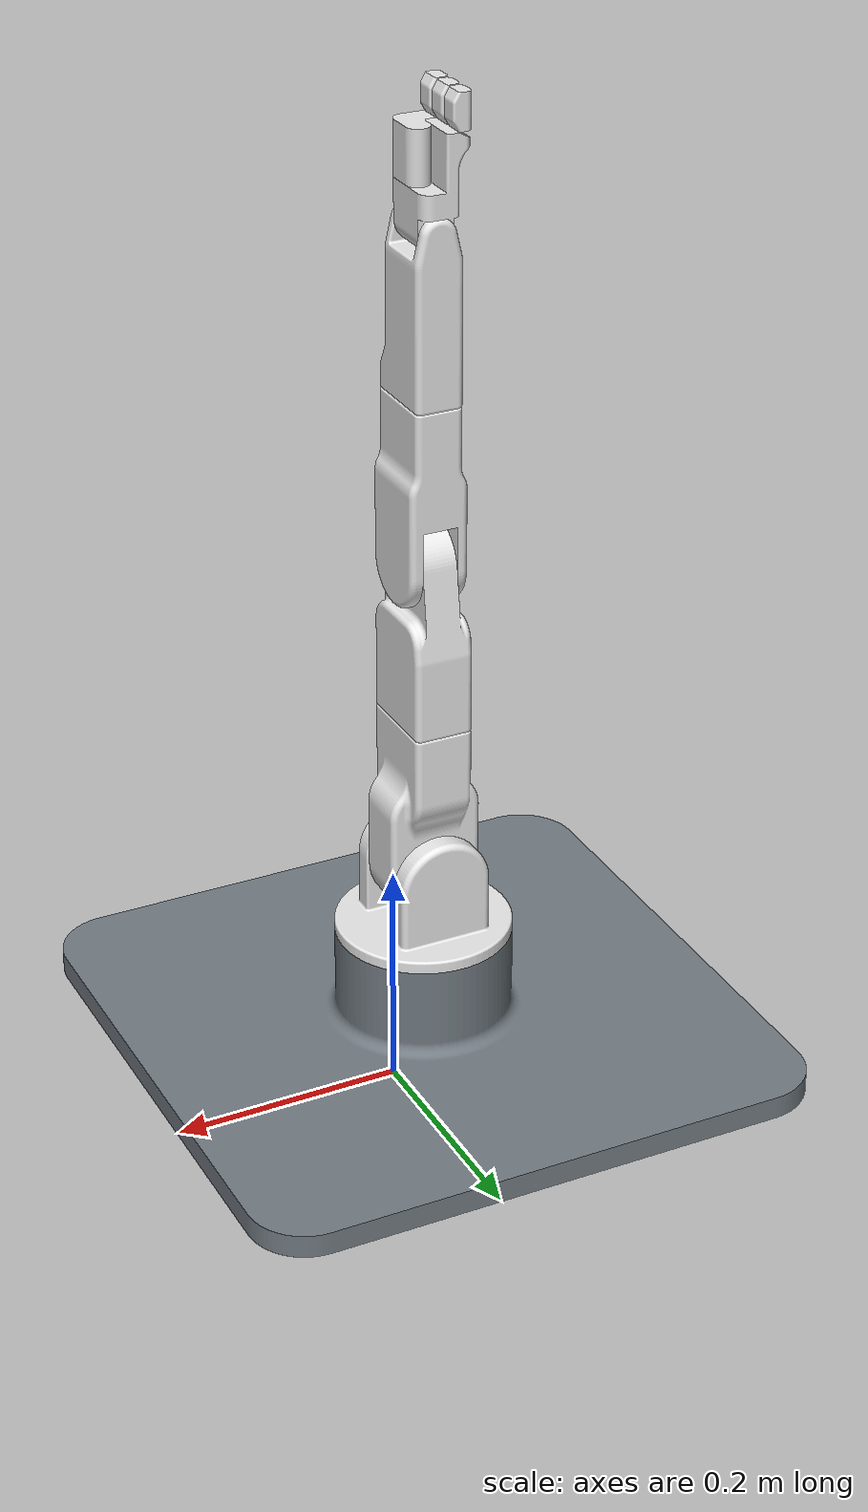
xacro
<?xml version="1.0"?>
<robot xmlns:xacro="http://www.ros.org/wiki/xacro" name="mrm_001">
    <xacro:arg name="initial_positions_file" default="initial_positions.yaml" />

    <!-- Import mrm_001 urdf file -->
    <xacro:include filename="$(find mrm_sim)/description/xacro/mrm_001.urdf.xacro" />

    <!-- Import control_xacro -->
    <xacro:include filename="mrm_001.ros2_control.xacro" />

    <xacro:mrm_001_ros2_control name="FakeSystem" initial_positions_file="$(arg initial_positions_file)"/>

</robot>

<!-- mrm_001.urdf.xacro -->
<robot xmlns:xacro="http://www.ros.org/wiki/xacro" name="mrm_001">

  <xacro:arg name="namespace" default=""/>

  <xacro:include filename="$(find mrm_sim)/description/xacro/macro.mrm_001_description.xacro" />

  <xacro:mrm_001 namespace="$(arg namespace)"/>

</robot>

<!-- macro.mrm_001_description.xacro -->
<robot name="mrm_001"
	xmlns:xacro="http://www.ros.org/wiki/xacro">

	<xacro:include filename="$(find mrm_sim)/description/xacro/macro.gazebo_config_control.xacro" />
	<xacro:include filename="$(find mrm_sim)/description/xacro/macro.transmission.xacro" />

	<xacro:macro name="mrm_001" params="namespace">

		<link name="base">
			<visual>
				<origin xyz="-0.021579 0.0130665 0.072432" rpy="0 -0 0" />
				<geometry>
					<mesh filename="file:///$(find mrm_sim)/description/meshes/base.stl"/>
				</geometry>
				<material name="base_material">
					<color rgba="0.439216 0.47451 0.501961 1.0"/>
				</material>
			</visual>
			<collision>
				<origin xyz="-0.021579 0.0130665 0.072432" rpy="0 -0 0" />
				<geometry>
					<mesh filename="file:///$(find mrm_sim)/description/meshes/base.stl"/>
				</geometry>
				<material name="base_material">
					<color rgba="0.439216 0.47451 0.501961 1.0"/>
				</material>
			</collision>
			<inertial>
				<origin xyz="-0.021579 0.0130665 0.0735291" rpy="0 0 0"/>
				<mass value="127.624" />
				<inertia ixx="2.14806" ixy="3.89635e-16" ixz="0" iyy="2.14806" iyz="0" izz="4.14935" />
			</inertial>
		</link>

		<link name="mrm_link_1">
			<visual>
				<origin xyz="1.04083e-17 -3.46945e-18 -0.02" rpy="3.14159 -0 0" />
				<geometry>
					<mesh filename="file:///$(find mrm_sim)/description/meshes/mrm_link_1.stl"/>
				</geometry>
				<material name="mrm_link_1_material">
					<color rgba="0.901961 0.901961 0.901961 1.0"/>
				</material>
			</visual>
			<collision>
				<origin xyz="1.04083e-17 -3.46945e-18 -0.02" rpy="3.14159 -0 0" />
				<geometry>
					<mesh filename="file:///$(find mrm_sim)/description/meshes/mrm_link_1.stl"/>
				</geometry>
				<material name="mrm_link_1_material">
					<color rgba="0.901961 0.901961 0.901961 1.0"/>
				</material>
			</collision>
			<inertial>
				<origin xyz="1.17022e-17 9.15212e-18 -0.0323401" rpy="0 0 0"/>
				<mass value="0.457002" />
				<inertia ixx="0.000783702" ixy="0" ixz="0" iyy="0.000994831" iyz="0" izz="0.000989884" />
			</inertial>
		</link>

		<link name="mrm_link_2">
			<visual>
				<origin xyz="-1.04083e-17 -0.07 -0.05" rpy="-1.2326e-32 -1.2326e-32 -1.2326e-32" />
				<geometry>
					<mesh filename="file:///$(find mrm_sim)/description/meshes/mrm_link_2.stl"/>
				</geometry>
				<material name="mrm_link_2_material">
					<color rgba="0.901961 0.901961 0.901961 1.0"/>
				</material>
			</visual>
			<collision>
				<origin xyz="-1.04083e-17 -0.07 -0.05" rpy="-1.2326e-32 -1.2326e-32 -1.2326e-32" />
				<geometry>
					<mesh filename="file:///$(find mrm_sim)/description/meshes/mrm_link_2.stl"/>
				</geometry>
				<material name="mrm_link_2_material">
					<color rgba="0.901961 0.901961 0.901961 1.0"/>
				</material>
			</collision>
			<inertial>
				<origin xyz="-9.37001e-09 -0.055345 -0.025" rpy="0 0 0"/>
				<mass value="0.724873" />
				<inertia ixx="0.00195482" ixy="-3.22679e-10" ixz="-8.48697e-12" iyy="0.000537775" iyz="-3.35181e-10" izz="0.00198303" />
			</inertial>
		</link>

		<link name="mrm_link_3">
			<visual>
				<origin xyz="-6.93889e-18 -0.025 -0.07" rpy="-1.5708 -1.2326e-32 -1.2326e-32" />
				<geometry>
					<mesh filename="file:///$(find mrm_sim)/description/meshes/mrm_link_3.stl"/>
				</geometry>
				<material name="mrm_link_3_material">
					<color rgba="0.901961 0.901961 0.901961 1.0"/>
				</material>
			</visual>
			<collision>
				<origin xyz="-6.93889e-18 -0.025 -0.07" rpy="-1.5708 -1.2326e-32 -1.2326e-32" />
				<geometry>
					<mesh filename="file:///$(find mrm_sim)/description/meshes/mrm_link_3.stl"/>
				</geometry>
				<material name="mrm_link_3_material">
					<color rgba="0.901961 0.901961 0.901961 1.0"/>
				</material>
			</collision>
			<inertial>
				<origin xyz="0.0012311 -2.33746e-11 -0.0716506" rpy="0 0 0"/>
				<mass value="0.54821" />
				<inertia ixx="0.00121056" ixy="-2.94841e-12" ixz="-3.95885e-05" iyy="0.00138926" iyz="-7.93491e-13" izz="0.000368182" />
			</inertial>
		</link>

		<link name="mrm_link_4">
			<visual>
				<origin xyz="-8.67362e-18 -0.07 -0.01" rpy="4.93038e-32 -1.07439e-31 4.23516e-22" />
				<geometry>
					<mesh filename="file:///$(find mrm_sim)/description/meshes/mrm_link_4.stl"/>
				</geometry>
				<material name="mrm_link_4_material">
					<color rgba="0.901961 0.901961 0.901961 1.0"/>
				</material>
			</visual>
			<collision>
				<origin xyz="-8.67362e-18 -0.07 -0.01" rpy="4.93038e-32 -1.07439e-31 4.23516e-22" />
				<geometry>
					<mesh filename="file:///$(find mrm_sim)/description/meshes/mrm_link_4.stl"/>
				</geometry>
				<material name="mrm_link_4_material">
					<color rgba="0.901961 0.901961 0.901961 1.0"/>
				</material>
			</collision>
			<inertial>
				<origin xyz="-1.09943e-17 -0.0673906 0.015" rpy="0 0 0"/>
				<mass value="0.412468" />
				<inertia ixx="0.000869642" ixy="1.08659e-25" ixz="2.40142e-34" iyy="0.000256564" iyz="4.64206e-35" izz="0.000941521" />
			</inertial>
		</link>

		<link name="mrm_link_5">
			<visual>
				<origin xyz="-0.000355339 -0.02 -0.07" rpy="-1.5708 -0 2.05329e-30" />
				<geometry>
					<mesh filename="file:///$(find mrm_sim)/description/meshes/mrm_link_5.stl"/>
				</geometry>
				<material name="mrm_link_5_material">
					<color rgba="0.901961 0.901961 0.901961 1.0"/>
				</material>
			</visual>
			<collision>
				<origin xyz="-0.000355339 -0.02 -0.07" rpy="-1.5708 -0 2.05329e-30" />
				<geometry>
					<mesh filename="file:///$(find mrm_sim)/description/meshes/mrm_link_5.stl"/>
				</geometry>
				<material name="mrm_link_5_material">
					<color rgba="0.901961 0.901961 0.901961 1.0"/>
				</material>
			</collision>
			<inertial>
				<origin xyz="-0.00417037 -5.28886e-12 -0.0650493" rpy="0 0 0"/>
				<mass value="0.332243" />
				<inertia ixx="0.000543467" ixy="6.10432e-13" ixz="1.93456e-05" iyy="0.000616597" iyz="-8.66254e-14" izz="0.000159715" />
			</inertial>
		</link>

		<link name="mrm_link_6">
			<visual>
				<origin xyz="0.04 -0.015 -0.02" rpy="-1.5708 -1.5708 0" />
				<geometry>
					<mesh filename="file:///$(find mrm_sim)/description/meshes/mrm_link_6.stl"/>
				</geometry>
				<material name="mrm_link_6_material">
					<color rgba="0.901961 0.901961 0.901961 1.0"/>
				</material>
			</visual>
			<collision>
				<origin xyz="0.04 -0.015 -0.02" rpy="-1.5708 -1.5708 0" />
				<geometry>
					<mesh filename="file:///$(find mrm_sim)/description/meshes/mrm_link_6.stl"/>
				</geometry>
				<material name="mrm_link_6_material">
					<color rgba="0.901961 0.901961 0.901961 1.0"/>
				</material>
			</collision>
			<inertial>
				<origin xyz="0.0258522 -0.00332296 -0.0173842" rpy="0 0 0"/>
				<mass value="0.095315" />
				<inertia ixx="7.76724e-05" ixy="2.20808e-06" ixz="1.09983e-05" iyy="6.55423e-05" iyz="-8.61508e-06" izz="2.84049e-05" />
			</inertial>
		</link>

		<link name="thumb_base">
			<visual>
				<origin xyz="-3.46945e-18 0 0" rpy="3.14159 -0 -4.75263e-20" />
				<geometry>
					<mesh filename="file:///$(find mrm_sim)/description/meshes/thumb_base.stl"/>
				</geometry>
				<material name="thumb_base_material">
					<color rgba="0.901961 0.901961 0.901961 1.0"/>
				</material>
			</visual>
			<collision>
				<origin xyz="-3.46945e-18 0 0" rpy="3.14159 -0 -4.75263e-20" />
				<geometry>
					<mesh filename="file:///$(find mrm_sim)/description/meshes/thumb_base.stl"/>
				</geometry>
				<material name="thumb_base_material">
					<color rgba="0.901961 0.901961 0.901961 1.0"/>
				</material>
			</collision>
			<inertial>
				<origin xyz="-0.00466898 0.0130108 -0.023257" rpy="0 0 0"/>
				<mass value="0.0472774" />
				<inertia ixx="1.32446e-05" ixy="1.59951e-06" ixz="-6.91584e-07" iyy="1.18987e-05" iyz="2.50125e-07" izz="9.24953e-06" />
			</inertial>
		</link>

		<link name="finger_link">
			<visual>
				<origin xyz="-0.015 -0.0035 0.009" rpy="1.5708 -4.23516e-22 0" />
				<geometry>
					<mesh filename="file:///$(find mrm_sim)/description/meshes/finger_link.stl"/>
				</geometry>
				<material name="finger_link_material">
					<color rgba="0.901961 0.901961 0.901961 1.0"/>
				</material>
			</visual>
			<collision>
				<origin xyz="-0.015 -0.0035 0.009" rpy="1.5708 -4.23516e-22 0" />
				<geometry>
					<mesh filename="file:///$(find mrm_sim)/description/meshes/finger_link.stl"/>
				</geometry>
				<material name="finger_link_material">
					<color rgba="0.901961 0.901961 0.901961 1.0"/>
				</material>
			</collision>
			<inertial>
				<origin xyz="-0.015 -0.0037786 1.73472e-18" rpy="0 0 0"/>
				<mass value="0.00804659" />
				<inertia ixx="3.48713e-07" ixy="1.70679e-28" ixz="-7.43421e-13" iyy="7.51787e-07" iyz="-8.78592e-26" izz="6.95805e-07" />
			</inertial>
		</link>

		<joint name="revolute_finger_3a" type="revolute">
			<origin xyz="-0.02 0.02 -0.045" rpy="-1.5708 -1.5708 0" />
			<parent link="thumb_base" />
			<child link="finger_link" />
			<axis xyz="0 0 1"/>
			<limit effort="10" lower="-1.5708" upper="1.5708" velocity="6.2832"/>
			<joint_properties friction="1"/>
		</joint>

		<joint name="revolute_thumb" type="revolute">
			<origin xyz="0.035 0.005 -0.02" rpy="-1.5708 0.00055944 1.5708" />
			<parent link="mrm_link_6" />
			<child link="thumb_base" />
			<axis xyz="0 0 1"/>
			<limit effort="10" lower="-3.14159" upper="0" velocity="6.2832"/>
			<joint_properties friction="1"/>
		</joint>

		<link name="finger_link_2">
			<visual>
				<origin xyz="0.015 -0.0035 0.009" rpy="1.5708 -0 1.97215e-31" />
				<geometry>
					<mesh filename="file:///$(find mrm_sim)/description/meshes/finger_link.stl"/>
				</geometry>
				<material name="finger_link_material">
					<color rgba="0.901961 0.901961 0.901961 1.0"/>
				</material>
			</visual>
			<collision>
				<origin xyz="0.015 -0.0035 0.009" rpy="1.5708 -0 1.97215e-31" />
				<geometry>
					<mesh filename="file:///$(find mrm_sim)/description/meshes/finger_link.stl"/>
				</geometry>
				<material name="finger_link_material">
					<color rgba="0.901961 0.901961 0.901961 1.0"/>
				</material>
			</collision>
			<inertial>
				<origin xyz="0.015 -0.0037786 5.20417e-18" rpy="0 0 0"/>
				<mass value="0.00804659" />
				<inertia ixx="3.48713e-07" ixy="-2.15527e-43" ixz="-7.43421e-13" iyy="7.51787e-07" iyz="7.6492e-38" izz="6.95805e-07" />
			</inertial>
		</link>

		<joint name="revolute_finger_1a" type="revolute">
			<origin xyz="0.08 -0.015 3.46945e-17" rpy="1.98487e-15 -3.83644e-15 -1.95856e-12" />
			<parent link="mrm_link_6" />
			<child link="finger_link_2" />
			<axis xyz="0 0 1"/>
			<limit effort="10" lower="-1.5708" upper="1.5708" velocity="6.2832"/>
			<joint_properties friction="1"/>
		</joint>

		<link name="finger_link_3">
			<visual>
				<origin xyz="-0.015 -0.0035 0.009" rpy="1.5708 4.23516e-22 7.88861e-31" />
				<geometry>
					<mesh filename="file:///$(find mrm_sim)/description/meshes/finger_link.stl"/>
				</geometry>
				<material name="finger_link_material">
					<color rgba="0.901961 0.901961 0.901961 1.0"/>
				</material>
			</visual>
			<collision>
				<origin xyz="-0.015 -0.0035 0.009" rpy="1.5708 4.23516e-22 7.88861e-31" />
				<geometry>
					<mesh filename="file:///$(find mrm_sim)/description/meshes/finger_link.stl"/>
				</geometry>
				<material name="finger_link_material">
					<color rgba="0.901961 0.901961 0.901961 1.0"/>
				</material>
			</collision>
			<inertial>
				<origin xyz="-0.015 -0.0037786 -1.73472e-18" rpy="0 0 0"/>
				<mass value="0.00804659" />
				<inertia ixx="3.48713e-07" ixy="-3.18394e-28" ixz="-7.43421e-13" iyy="7.51787e-07" iyz="-3.00341e-37" izz="6.95805e-07" />
			</inertial>
		</link>

		<joint name="revolute_finger_2a" type="revolute">
			<origin xyz="0.08 -0.015 -0.02" rpy="3.14159 2.12176e-15 3.14159" />
			<parent link="mrm_link_6" />
			<child link="finger_link_3" />
			<axis xyz="0 0 1"/>
			<limit effort="10" lower="-1.5708" upper="1.5708" velocity="6.2832"/>
			<joint_properties friction="1"/>
		</joint>

		<joint name="revolute_wrist" type="revolute">
			<origin xyz="-0.0253553 0 -0.14" rpy="3.14159 1.5708 0" />
			<parent link="mrm_link_5" />
			<child link="mrm_link_6" />
			<axis xyz="0 0 1"/>
			<limit effort="10" lower="-1.5708" upper="1.5708" velocity="6.2832"/>
			<joint_properties friction="1"/>
		</joint>

		<joint name="revolute_forearm" type="revolute">
			<origin xyz="0 -0.14 0.015" rpy="-1.5708 -1.38646e-14 -2.22045e-16" />
			<parent link="mrm_link_4" />
			<child link="mrm_link_5" />
			<axis xyz="0 0 1"/>
			<limit effort="10" lower="-6.2832" upper="6.2832" velocity="6.2832"/>
			<joint_properties friction="1"/>
		</joint>

		<joint name="revolute_elbow" type="revolute">
			<origin xyz="0.005 0.015 -0.139756" rpy="1.5708 2.66415e-06 6.50748e-16" />
			<parent link="mrm_link_3" />
			<child link="mrm_link_4" />
			<axis xyz="0 0 1"/>
			<limit effort="10" lower="-1.5708" upper="1.5708" velocity="6.2832"/>
			<joint_properties friction="1"/>
		</joint>

		<joint name="revolute_upper" type="revolute">
			<origin xyz="-3.46945e-18 -0.14 -0.025" rpy="-1.5708 1.5708 0" />
			<parent link="mrm_link_2" />
			<child link="mrm_link_3" />
			<axis xyz="0 0 1"/>
			<limit effort="10" lower="-6.2832" upper="6.2832" velocity="6.2832"/>
			<joint_properties friction="1"/>
		</joint>

		<joint name="revolute_shoulder_2" type="revolute">
			<origin xyz="-0.025 -3.46945e-18 -0.06" rpy="1.5708 -1.11022e-16 -1.5708" />
			<parent link="mrm_link_1" />
			<child link="mrm_link_2" />
			<axis xyz="0 0 1"/>
			<limit effort="10" lower="-3.1459" upper="3.1459" velocity="6.2832"/>
			<joint_properties friction="1"/>
		</joint>

		<joint name="revolute_shoulder_1" type="revolute">
			<origin xyz="-0.021579 0.0130665 0.152432" rpy="3.14159 -0 -1.5708" />
			<parent link="base" />
			<child link="mrm_link_1" />
			<axis xyz="0 0 1"/>
			<limit effort="10" lower="-6.2832" upper="6.2832" velocity="6.2832"/>
			<joint_properties friction="1"/>
		</joint>

		<xacro:config_ctr_gazebo />
		<xacro:dsr_transmission />

	</xacro:macro>

</robot>
